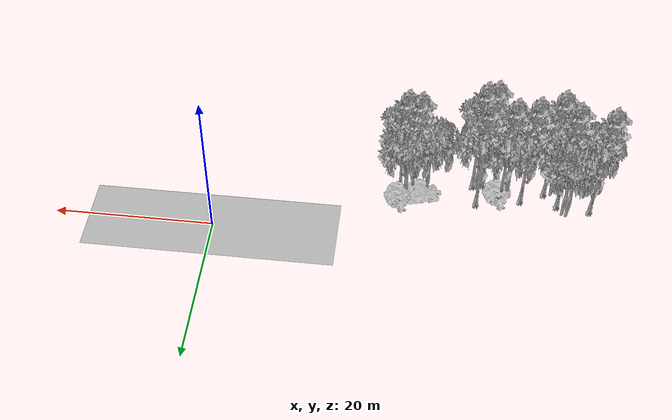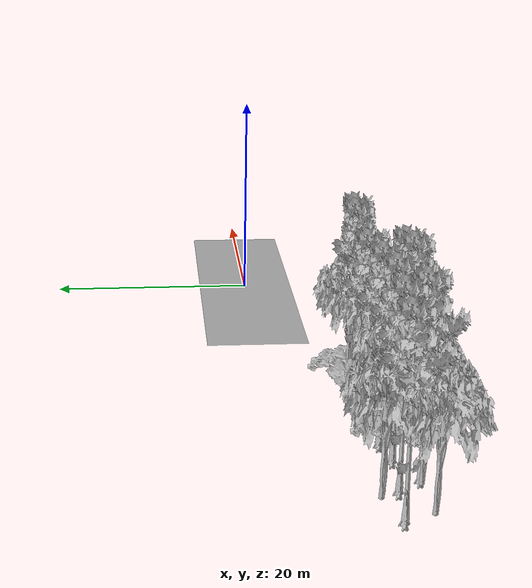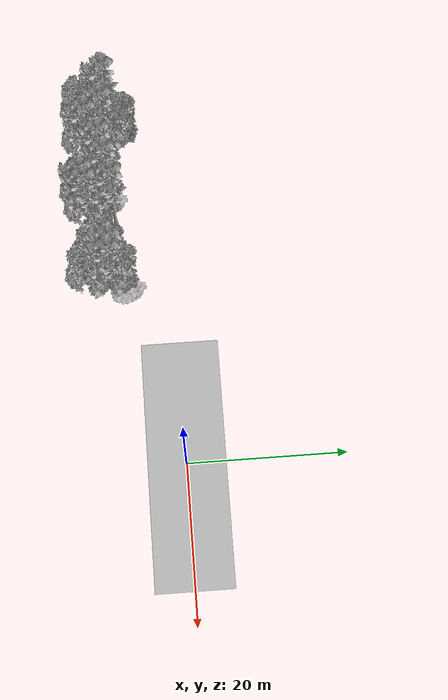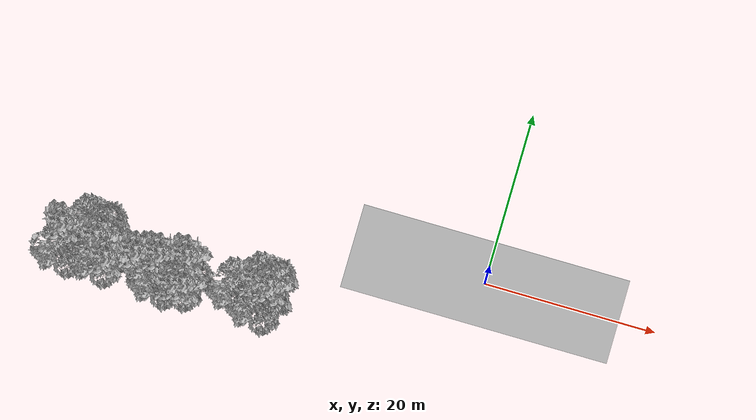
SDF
<sdf version="1.7">
 <world name="default">
  <model name="ground_plane">
   <static>1</static>
   <link name="link">
    <collision name="collision">
     <pose>-50 0 0 0 -0 0</pose>
     <geometry><plane><normal>0 0 1</normal><size>100 100</size></plane></geometry>
     <surface><contact><ode><min_depth>0.01</min_depth><max_vel>0</max_vel></ode></contact></surface>
    </collision>
    <visual name="grass">
     <cast_shadows>0</cast_shadows>
     <geometry>
      <mesh>
       <scale>0.5814285714285714 0.18142857142857144 0.1</scale>
       <uri>file://grass_plane/meshes/grass_plane.dae</uri>
      </mesh>
     </geometry>
    </visual>
   </link>
  </model>
  <model name="Tree 49">
   <static>1</static>
   <pose>-32.16591095284862 -10.34539650880788 0 1.57079 -0 0</pose>
   <link name="link">
    <collision name="collision">
     <geometry><mesh><scale>3.5 5 3.5</scale><uri>model://tree_9/meshes/tree_9.obj</uri></mesh></geometry>
    </collision>
    <visual name="visual">
     <geometry><mesh><scale>3.5 5 3.5</scale><uri>model://tree_9/meshes/tree_9.obj</uri></mesh></geometry>
    </visual>
   </link>
  </model>
  <model name="Tree 74">
   <static>1</static>
   <pose>-33.38966319510442 -10.704734620714081 0 1.57079 -0 0</pose>
   <link name="link">
    <collision name="collision">
     <geometry><mesh><scale>3.5 5 3.5</scale><uri>model://tree_9/meshes/tree_9.obj</uri></mesh></geometry>
    </collision>
    <visual name="visual">
     <geometry><mesh><scale>3.5 5 3.5</scale><uri>model://tree_9/meshes/tree_9.obj</uri></mesh></geometry>
    </visual>
   </link>
  </model>
  <model name="Tree 80">
   <static>1</static>
   <pose>-42.874006086607345 -7.980945791096854 0 1.57079 -0 0</pose>
   <link name="link">
    <collision name="collision">
     <geometry><mesh><scale>3.5 5 3.5</scale><uri>model://tree_9/meshes/tree_9.obj</uri></mesh></geometry>
    </collision>
    <visual name="visual">
     <geometry><mesh><scale>3.5 5 3.5</scale><uri>model://tree_9/meshes/tree_9.obj</uri></mesh></geometry>
    </visual>
   </link>
  </model>
  <model name="Tree 119">
   <static>1</static>
   <pose>-22.925428141938475 -7.891782289150005 0 1.57079 -0 0</pose>
   <link name="link">
    <collision name="collision">
     <geometry><mesh><scale>3.5 5 3.5</scale><uri>model://tree_9/meshes/tree_9.obj</uri></mesh></geometry>
    </collision>
    <visual name="visual">
     <geometry><mesh><scale>3.5 5 3.5</scale><uri>model://tree_9/meshes/tree_9.obj</uri></mesh></geometry>
    </visual>
   </link>
  </model>
  <model name="Tree 128">
   <static>1</static>
   <pose>-46.40583102946372 -9.91388502406651 0 1.57079 -0 0</pose>
   <link name="link">
    <collision name="collision">
     <geometry><mesh><scale>3.5 5 3.5</scale><uri>model://tree_2/meshes/tree_2.obj</uri></mesh></geometry>
    </collision>
    <visual name="visual">
     <geometry><mesh><scale>3.5 5 3.5</scale><uri>model://tree_2/meshes/tree_2.obj</uri></mesh></geometry>
    </visual>
   </link>
  </model>
  <model name="Tree 138">
   <static>1</static>
   <pose>-24.491533465990997 -7.682028331269484 0 1.57079 -0 0</pose>
   <link name="link">
    <collision name="collision">
     <geometry><mesh><scale>3.5 5 3.5</scale><uri>model://tree_9/meshes/tree_9.obj</uri></mesh></geometry>
    </collision>
    <visual name="visual">
     <geometry><mesh><scale>3.5 5 3.5</scale><uri>model://tree_9/meshes/tree_9.obj</uri></mesh></geometry>
    </visual>
   </link>
  </model>
  <model name="Tree 145">
   <static>1</static>
   <pose>-46.976875270208375 -7.558335046314816 0 1.57079 -0 0</pose>
   <link name="link">
    <collision name="collision">
     <geometry><mesh><scale>3.5 5 3.5</scale><uri>model://tree_9/meshes/tree_9.obj</uri></mesh></geometry>
    </collision>
    <visual name="visual">
     <geometry><mesh><scale>3.5 5 3.5</scale><uri>model://tree_9/meshes/tree_9.obj</uri></mesh></geometry>
    </visual>
   </link>
  </model>
  <model name="Tree 152">
   <static>1</static>
   <pose>-35.31778763679311 -8.023415156130389 0 1.57079 -0 0</pose>
   <link name="link">
    <collision name="collision">
     <geometry><mesh><scale>4 2.5 4</scale><uri>model://tree_1/meshes/tree_1.obj</uri></mesh></geometry>
    </collision>
    <visual name="visual">
     <geometry><mesh><scale>4 2.5 4</scale><uri>model://tree_1/meshes/tree_1.obj</uri></mesh></geometry>
    </visual>
   </link>
  </model>
  <model name="Tree 167">
   <static>1</static>
   <pose>-43.54043390489575 -6.616497783034269 0 1.57079 -0 0</pose>
   <link name="link">
    <collision name="collision">
     <geometry><mesh><scale>3.5 5 3.5</scale><uri>model://tree_2/meshes/tree_2.obj</uri></mesh></geometry>
    </collision>
    <visual name="visual">
     <geometry><mesh><scale>3.5 5 3.5</scale><uri>model://tree_2/meshes/tree_2.obj</uri></mesh></geometry>
    </visual>
   </link>
  </model>
  <model name="Tree 198">
   <static>1</static>
   <pose>-41.27467431039099 -9.94467456345189 0 1.57079 -0 0</pose>
   <link name="link">
    <collision name="collision">
     <geometry><mesh><scale>3.5 5 3.5</scale><uri>model://tree_9/meshes/tree_9.obj</uri></mesh></geometry>
    </collision>
    <visual name="visual">
     <geometry><mesh><scale>3.5 5 3.5</scale><uri>model://tree_9/meshes/tree_9.obj</uri></mesh></geometry>
    </visual>
   </link>
  </model>
  <model name="Tree 199">
   <static>1</static>
   <pose>-22.974434792113 -6.221540622499562 0 1.57079 -0 0</pose>
   <link name="link">
    <collision name="collision">
     <geometry><mesh><scale>4 2.5 4</scale><uri>model://tree_1/meshes/tree_1.obj</uri></mesh></geometry>
    </collision>
    <visual name="visual">
     <geometry><mesh><scale>4 2.5 4</scale><uri>model://tree_1/meshes/tree_1.obj</uri></mesh></geometry>
    </visual>
   </link>
  </model>
  <model name="Tree 246">
   <static>1</static>
   <pose>-35.65122462561596 -7.856072011490874 0 1.57079 -0 0</pose>
   <link name="link">
    <collision name="collision">
     <geometry><mesh><scale>3.5 5 3.5</scale><uri>model://tree_9/meshes/tree_9.obj</uri></mesh></geometry>
    </collision>
    <visual name="visual">
     <geometry><mesh><scale>3.5 5 3.5</scale><uri>model://tree_9/meshes/tree_9.obj</uri></mesh></geometry>
    </visual>
   </link>
  </model>
  <model name="Tree 270">
   <static>1</static>
   <pose>-32.72862991575658 -9.917096730690451 0 1.57079 -0 0</pose>
   <link name="link">
    <collision name="collision">
     <geometry><mesh><scale>3.5 5 3.5</scale><uri>model://tree_2/meshes/tree_2.obj</uri></mesh></geometry>
    </collision>
    <visual name="visual">
     <geometry><mesh><scale>3.5 5 3.5</scale><uri>model://tree_2/meshes/tree_2.obj</uri></mesh></geometry>
    </visual>
   </link>
  </model>
  <model name="Tree 273">
   <static>1</static>
   <pose>-38.278373900092234 -8.39281769683901 0 1.57079 -0 0</pose>
   <link name="link">
    <collision name="collision">
     <geometry><mesh><scale>3.5 5 3.5</scale><uri>model://tree_9/meshes/tree_9.obj</uri></mesh></geometry>
    </collision>
    <visual name="visual">
     <geometry><mesh><scale>3.5 5 3.5</scale><uri>model://tree_9/meshes/tree_9.obj</uri></mesh></geometry>
    </visual>
   </link>
  </model>
  <model name="Tree 287">
   <static>1</static>
   <pose>-36.49405781161131 -8.663280387233822 0 1.57079 -0 0</pose>
   <link name="link">
    <collision name="collision">
     <geometry><mesh><scale>3.5 5 3.5</scale><uri>model://tree_2/meshes/tree_2.obj</uri></mesh></geometry>
    </collision>
    <visual name="visual">
     <geometry><mesh><scale>3.5 5 3.5</scale><uri>model://tree_2/meshes/tree_2.obj</uri></mesh></geometry>
    </visual>
   </link>
  </model>
  <model name="Tree 330">
   <static>1</static>
   <pose>-23.700552709087347 -7.334255167185896 0 1.57079 -0 0</pose>
   <link name="link">
    <collision name="collision">
     <geometry><mesh><scale>3.5 5 3.5</scale><uri>model://tree_2/meshes/tree_2.obj</uri></mesh></geometry>
    </collision>
    <visual name="visual">
     <geometry><mesh><scale>3.5 5 3.5</scale><uri>model://tree_2/meshes/tree_2.obj</uri></mesh></geometry>
    </visual>
   </link>
  </model>
  <model name="Tree 429">
   <static>1</static>
   <pose>-32.66841116542568 -7.223244690977677 0 1.57079 -0 0</pose>
   <link name="link">
    <collision name="collision">
     <geometry><mesh><scale>3.5 5 3.5</scale><uri>model://tree_9/meshes/tree_9.obj</uri></mesh></geometry>
    </collision>
    <visual name="visual">
     <geometry><mesh><scale>3.5 5 3.5</scale><uri>model://tree_9/meshes/tree_9.obj</uri></mesh></geometry>
    </visual>
   </link>
  </model>
  <model name="Tree 433">
   <static>1</static>
   <pose>-44.05575805800539 -6.4650417569763405 0 1.57079 -0 0</pose>
   <link name="link">
    <collision name="collision">
     <geometry><mesh><scale>3.5 5 3.5</scale><uri>model://tree_2/meshes/tree_2.obj</uri></mesh></geometry>
    </collision>
    <visual name="visual">
     <geometry><mesh><scale>3.5 5 3.5</scale><uri>model://tree_2/meshes/tree_2.obj</uri></mesh></geometry>
    </visual>
   </link>
  </model>
  <model name="Tree 454">
   <static>1</static>
   <pose>-25.765547269669675 -7.216188999874472 0 1.57079 -0 0</pose>
   <link name="link">
    <collision name="collision">
     <geometry><mesh><scale>3 2 3</scale><uri>model://tree_3/meshes/tree_3.obj</uri></mesh></geometry>
    </collision>
    <visual name="visual">
     <geometry><mesh><scale>3 2 3</scale><uri>model://tree_3/meshes/tree_3.obj</uri></mesh></geometry>
    </visual>
   </link>
  </model>
  <model name="Tree 484">
   <static>1</static>
   <pose>-42.20515893904217 -9.869481150285123 0 1.57079 -0 0</pose>
   <link name="link">
    <collision name="collision">
     <geometry><mesh><scale>3.5 5 3.5</scale><uri>model://tree_2/meshes/tree_2.obj</uri></mesh></geometry>
    </collision>
    <visual name="visual">
     <geometry><mesh><scale>3.5 5 3.5</scale><uri>model://tree_2/meshes/tree_2.obj</uri></mesh></geometry>
    </visual>
   </link>
  </model>
  <model name="Tree 492">
   <static>1</static>
   <pose>-23.682145185685048 -10.01794905250179 0 1.57079 -0 0</pose>
   <link name="link">
    <collision name="collision">
     <geometry><mesh><scale>3.5 5 3.5</scale><uri>model://tree_2/meshes/tree_2.obj</uri></mesh></geometry>
    </collision>
    <visual name="visual">
     <geometry><mesh><scale>3.5 5 3.5</scale><uri>model://tree_2/meshes/tree_2.obj</uri></mesh></geometry>
    </visual>
   </link>
  </model>
  <model name="Tree 508">
   <static>1</static>
   <pose>-35.023006862173375 -10.357822764779861 0 1.57079 -0 0</pose>
   <link name="link">
    <collision name="collision">
     <geometry><mesh><scale>3.5 5 3.5</scale><uri>model://tree_2/meshes/tree_2.obj</uri></mesh></geometry>
    </collision>
    <visual name="visual">
     <geometry><mesh><scale>3.5 5 3.5</scale><uri>model://tree_2/meshes/tree_2.obj</uri></mesh></geometry>
    </visual>
   </link>
  </model>
  <model name="Tree 520">
   <static>1</static>
   <pose>-26.39379820522297 -8.77223607135499 0 1.57079 -0 0</pose>
   <link name="link">
    <collision name="collision">
     <geometry><mesh><scale>3.5 5 3.5</scale><uri>model://tree_2/meshes/tree_2.obj</uri></mesh></geometry>
    </collision>
    <visual name="visual">
     <geometry><mesh><scale>3.5 5 3.5</scale><uri>model://tree_2/meshes/tree_2.obj</uri></mesh></geometry>
    </visual>
   </link>
  </model>
 </world>
</sdf>
